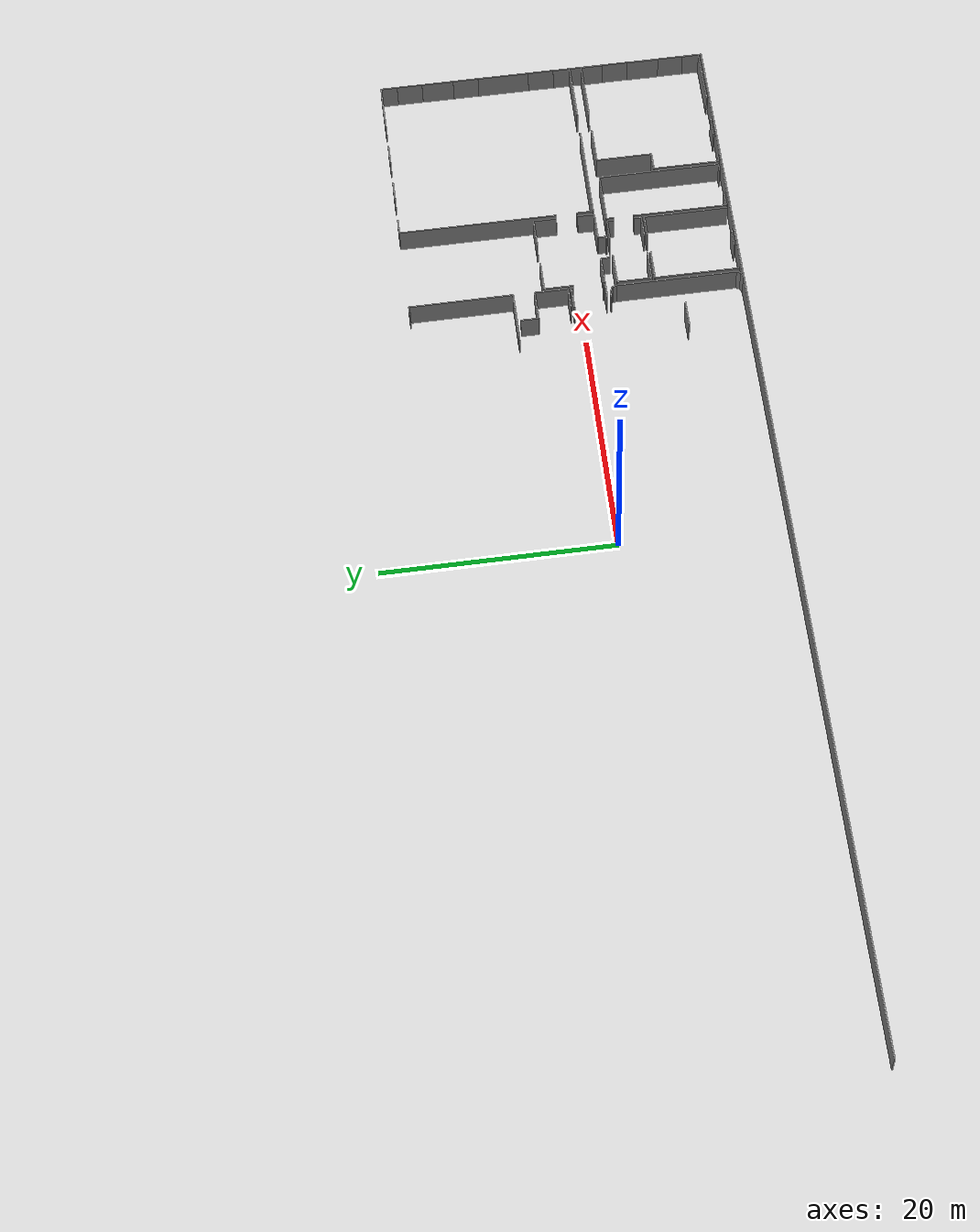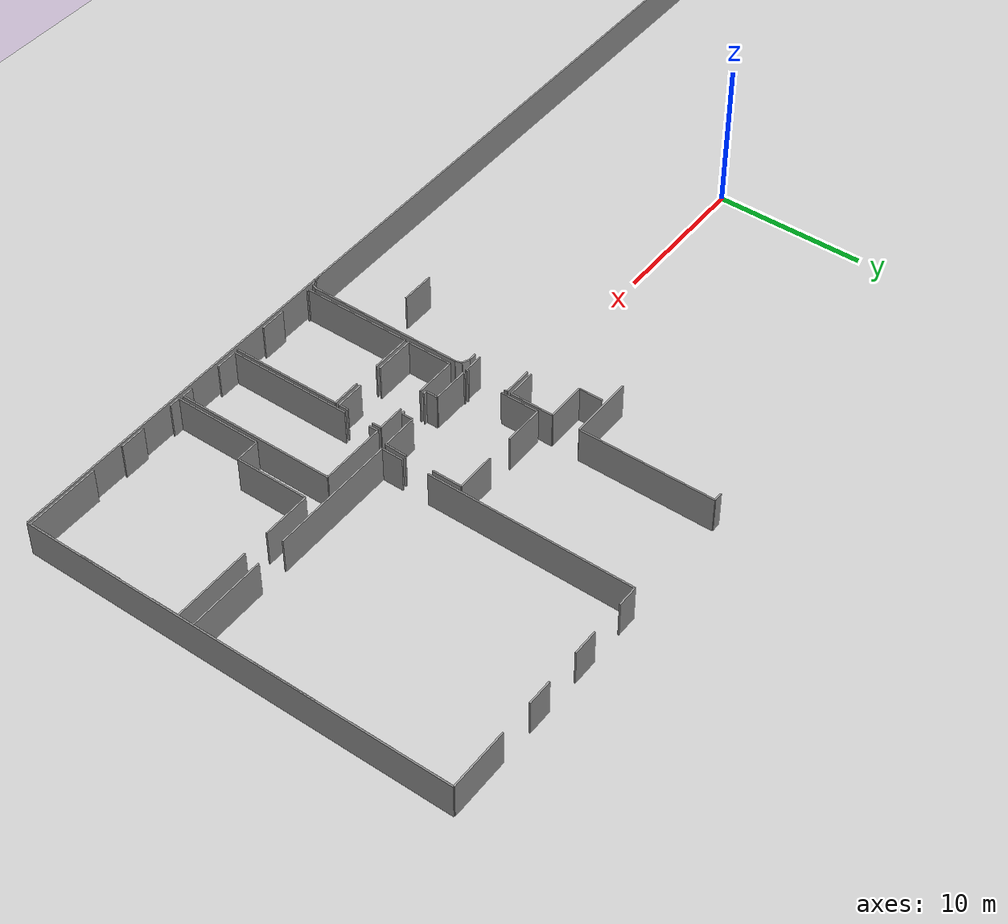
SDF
<sdf version="1.6">
 <world name="default">
  <model name="ground_plane">
   <static>1</static>
   <link name="link">
    <collision name="collision">
     <geometry><plane><normal>0 0 1</normal><size>100 100</size></plane></geometry>
     <surface><friction><ode><mu>100</mu><mu2>50</mu2></ode></friction></surface>
    </collision>
    <visual name="visual">
     <cast_shadows>0</cast_shadows>
     <geometry><plane><normal>0 0 1</normal><size>100 100</size></plane></geometry>
     <material>
      <script><uri>file://media/materials/scripts/gazebo.material</uri><name>Gazebo/Grey</name></script>
     </material>
    </visual>
   </link>
  </model>
  <model name="0510032266_A_40_1_103">
   <static>1</static>
   <link name="Wall_119">
    <collision name="Wall_119_Collision">
     <geometry><box><size>1.97434155817 0.1 2.5</size></box></geometry>
     <pose>0.987170779085 0 1.25 0 0 0</pose>
    </collision>
    <visual name="Wall_119_Visual">
     <pose>0.987170779085 0 1.25 0 0 0</pose>
     <geometry><box><size>1.97434155817 0.1 2.5</size></box></geometry>
     <material>
      <script><uri>file://media/materials/scripts/gazebo.material</uri><name>Gazebo/Grey</name></script>
      <ambient>1 1 1 1</ambient>
     </material>
    </visual>
    <pose>69.7387815732 -14.066437717 0 0 0 0.0</pose>
   </link>
   <link name="Wall_120">
    <collision name="Wall_120_Collision">
     <geometry><box><size>0.204912049057 0.1 2.5</size></box></geometry>
     <pose>0.102456024529 0 1.25 0 0 0</pose>
    </collision>
    <visual name="Wall_120_Visual">
     <pose>0.102456024529 0 1.25 0 0 0</pose>
     <geometry><box><size>0.204912049057 0.1 2.5</size></box></geometry>
     <material>
      <script><uri>file://media/materials/scripts/gazebo.material</uri><name>Gazebo/Grey</name></script>
      <ambient>1 1 1 1</ambient>
     </material>
    </visual>
    <pose>71.7131231313 -14.066437717 0 0 0 -1.57079632679</pose>
   </link>
   <link name="Wall_121">
    <collision name="Wall_121_Collision">
     <geometry><box><size>0.159714595857 0.1 2.5</size></box></geometry>
     <pose>0.0798572979287 0 1.25 0 0 0</pose>
    </collision>
    <visual name="Wall_121_Visual">
     <pose>0.0798572979287 0 1.25 0 0 0</pose>
     <geometry><box><size>0.159714595857 0.1 2.5</size></box></geometry>
     <material>
      <script><uri>file://media/materials/scripts/gazebo.material</uri><name>Gazebo/Grey</name></script>
      <ambient>1 1 1 1</ambient>
     </material>
    </visual>
    <pose>71.7131231313 -16.8410027233 0 0 0 -1.57079632679</pose>
   </link>
   <link name="Wall_122">
    <collision name="Wall_122_Collision">
     <geometry><box><size>1.31377316211 0.1 2.5</size></box></geometry>
     <pose>0.656886581054 0 1.25 0 0 0</pose>
    </collision>
    <visual name="Wall_122_Visual">
     <pose>0.656886581054 0 1.25 0 0 0</pose>
     <geometry><box><size>1.31377316211 0.1 2.5</size></box></geometry>
     <material>
      <script><uri>file://media/materials/scripts/gazebo.material</uri><name>Gazebo/Grey</name></script>
      <ambient>1 1 1 1</ambient>
     </material>
    </visual>
    <pose>71.7131231313 -17.0007173191 0 0 0 3.14159265359</pose>
   </link>
   <link name="Wall_277">
    <collision name="Wall_277_Collision">
     <geometry><box><size>1.94184001879 0.1 2.5</size></box></geometry>
     <pose>0.970920009395 0 1.25 0 0 0</pose>
    </collision>
    <visual name="Wall_277_Visual">
     <pose>0.970920009395 0 1.25 0 0 0</pose>
     <geometry><box><size>1.94184001879 0.1 2.5</size></box></geometry>
     <material>
      <script><uri>file://media/materials/scripts/gazebo.material</uri><name>Gazebo/Grey</name></script>
      <ambient>1 1 1 1</ambient>
     </material>
    </visual>
    <pose>71.7201058839 -13.7890320001 0 0 0 3.14159265359</pose>
   </link>
   <link name="Wall_281">
    <collision name="Wall_281_Collision">
     <geometry><box><size>1.56108956332 0.1 2.5</size></box></geometry>
     <pose>0.780544781662 0 1.25 0 0 0</pose>
    </collision>
    <visual name="Wall_281_Visual">
     <pose>0.780544781662 0 1.25 0 0 0</pose>
     <geometry><box><size>1.56108956332 0.1 2.5</size></box></geometry>
     <material>
      <script><uri>file://media/materials/scripts/gazebo.material</uri><name>Gazebo/Grey</name></script>
      <ambient>1 1 1 1</ambient>
     </material>
    </visual>
    <pose>69.066152059 -9.33111578039 0 0 0 -1.57079632679</pose>
   </link>
   <link name="Wall_282">
    <collision name="Wall_282_Collision">
     <geometry><box><size>2.64684411322 0.1 2.5</size></box></geometry>
     <pose>1.32342205661 0 1.25 0 0 0</pose>
    </collision>
    <visual name="Wall_282_Visual">
     <pose>1.32342205661 0 1.25 0 0 0</pose>
     <geometry><box><size>2.64684411322 0.1 2.5</size></box></geometry>
     <material>
      <script><uri>file://media/materials/scripts/gazebo.material</uri><name>Gazebo/Grey</name></script>
      <ambient>1 1 1 1</ambient>
     </material>
    </visual>
    <pose>69.066152059 -10.8922053437 0 0 0 0.0</pose>
   </link>
   <link name="Wall_283">
    <collision name="Wall_283_Collision">
     <geometry><box><size>2.89683538105 0.1 2.5</size></box></geometry>
     <pose>1.44841769052 0 1.25 0 0 0</pose>
    </collision>
    <visual name="Wall_283_Visual">
     <pose>1.44841769052 0 1.25 0 0 0</pose>
     <geometry><box><size>2.89683538105 0.1 2.5</size></box></geometry>
     <material>
      <script><uri>file://media/materials/scripts/gazebo.material</uri><name>Gazebo/Grey</name></script>
      <ambient>1 1 1 1</ambient>
     </material>
    </visual>
    <pose>71.7129961722 -10.8922053437 0 0 0 -1.56834202134</pose>
   </link>
   <link name="Wall_284">
    <collision name="Wall_284_Collision">
     <geometry><box><size>0.667805066939 0.1 2.5</size></box></geometry>
     <pose>0.33390253347 0 1.25 0 0 0</pose>
    </collision>
    <visual name="Wall_284_Visual">
     <pose>0.33390253347 0 1.25 0 0 0</pose>
     <geometry><box><size>0.667805066939 0.1 2.5</size></box></geometry>
     <material>
      <script><uri>file://media/materials/scripts/gazebo.material</uri><name>Gazebo/Grey</name></script>
      <ambient>1 1 1 1</ambient>
     </material>
    </visual>
    <pose>70.9332131453 -28.941224267 0 0 0 3.14159265359</pose>
   </link>
   <link name="Wall_291">
    <collision name="Wall_291_Collision">
     <geometry><box><size>2.26596669862 0.1 2.5</size></box></geometry>
     <pose>1.13298334931 0 1.25 0 0 0</pose>
    </collision>
    <visual name="Wall_291_Visual">
     <pose>1.13298334931 0 1.25 0 0 0</pose>
     <geometry><box><size>2.26596669862 0.1 2.5</size></box></geometry>
     <material>
      <script><uri>file://media/materials/scripts/gazebo.material</uri><name>Gazebo/Grey</name></script>
      <ambient>1 1 1 1</ambient>
     </material>
    </visual>
    <pose>68.9850251696 -23.5548558696 0 0 0 3.14159265359</pose>
   </link>
   <link name="Wall_294">
    <collision name="Wall_294_Collision">
     <geometry><box><size>0.556715821013 0.1 2.5</size></box></geometry>
     <pose>0.278357910507 0 1.25 0 0 0</pose>
    </collision>
    <visual name="Wall_294_Visual">
     <pose>0.278357910507 0 1.25 0 0 0</pose>
     <geometry><box><size>0.556715821013 0.1 2.5</size></box></geometry>
     <material>
      <script><uri>file://media/materials/scripts/gazebo.material</uri><name>Gazebo/Grey</name></script>
      <ambient>1 1 1 1</ambient>
     </material>
    </visual>
    <pose>70.3814487307 -17.3635665361 0 0 0 0.0</pose>
   </link>
   <link name="Wall_295">
    <collision name="Wall_295_Collision">
     <geometry><box><size>0.482670692922 0.1 2.5</size></box></geometry>
     <pose>0.241335346461 0 1.25 0 0 0</pose>
    </collision>
    <visual name="Wall_295_Visual">
     <pose>0.241335346461 0 1.25 0 0 0</pose>
     <geometry><box><size>0.482670692922 0.1 2.5</size></box></geometry>
     <material>
      <script><uri>file://media/materials/scripts/gazebo.material</uri><name>Gazebo/Grey</name></script>
      <ambient>1 1 1 1</ambient>
     </material>
    </visual>
    <pose>70.9381645517 -17.3635665361 0 0 0 -0.415046176137</pose>
   </link>
   <link name="Wall_296">
    <collision name="Wall_296_Collision">
     <geometry><box><size>0.403820158476 0.1 2.5</size></box></geometry>
     <pose>0.201910079238 0 1.25 0 0 0</pose>
    </collision>
    <visual name="Wall_296_Visual">
     <pose>0.201910079238 0 1.25 0 0 0</pose>
     <geometry><box><size>0.403820158476 0.1 2.5</size></box></geometry>
     <material>
      <script><uri>file://media/materials/scripts/gazebo.material</uri><name>Gazebo/Grey</name></script>
      <ambient>1 1 1 1</ambient>
     </material>
    </visual>
    <pose>71.3798553935 -17.558194895 0 0 0 -1.25660180278</pose>
   </link>
   <link name="Wall_297">
    <collision name="Wall_297_Collision">
     <geometry><box><size>10.4592746824 0.1 2.5</size></box></geometry>
     <pose>5.22963734122 0 1.25 0 0 0</pose>
    </collision>
    <visual name="Wall_297_Visual">
     <pose>5.22963734122 0 1.25 0 0 0</pose>
     <geometry><box><size>10.4592746824 0.1 2.5</size></box></geometry>
     <material>
      <script><uri>file://media/materials/scripts/gazebo.material</uri><name>Gazebo/Grey</name></script>
      <ambient>1 1 1 1</ambient>
     </material>
    </visual>
    <pose>71.5046562264 -17.942246288 0 0 0 -1.57079632679</pose>
   </link>
   <link name="Wall_298">
    <collision name="Wall_298_Collision">
     <geometry><box><size>0.38852491746 0.1 2.5</size></box></geometry>
     <pose>0.19426245873 0 1.25 0 0 0</pose>
    </collision>
    <visual name="Wall_298_Visual">
     <pose>0.19426245873 0 1.25 0 0 0</pose>
     <geometry><box><size>0.38852491746 0.1 2.5</size></box></geometry>
     <material>
      <script><uri>file://media/materials/scripts/gazebo.material</uri><name>Gazebo/Grey</name></script>
      <ambient>1 1 1 1</ambient>
     </material>
    </visual>
    <pose>71.5046562264 -28.4015209705 0 0 0 -1.97800510885</pose>
   </link>
   <link name="Wall_299">
    <collision name="Wall_299_Collision">
     <geometry><box><size>0.455887655317 0.1 2.5</size></box></geometry>
     <pose>0.227943827658 0 1.25 0 0 0</pose>
    </collision>
    <visual name="Wall_299_Visual">
     <pose>0.227943827658 0 1.25 0 0 0</pose>
     <geometry><box><size>0.455887655317 0.1 2.5</size></box></geometry>
     <material>
      <script><uri>file://media/materials/scripts/gazebo.material</uri><name>Gazebo/Grey</name></script>
      <ambient>1 1 1 1</ambient>
     </material>
    </visual>
    <pose>71.3507817509 -28.7582761488 0 0 0 -2.72865598857</pose>
   </link>
   <link name="Wall_311">
    <collision name="Wall_311_Collision">
     <geometry><box><size>4.31508718919 0.1 2.5</size></box></geometry>
     <pose>2.15754359459 0 1.25 0 0 0</pose>
    </collision>
    <visual name="Wall_311_Visual">
     <pose>2.15754359459 0 1.25 0 0 0</pose>
     <geometry><box><size>4.31508718919 0.1 2.5</size></box></geometry>
     <material>
      <script><uri>file://media/materials/scripts/gazebo.material</uri><name>Gazebo/Grey</name></script>
      <ambient>1 1 1 1</ambient>
     </material>
    </visual>
    <pose>71.73394443 -9.01765366817 0 0 0 3.14159265359</pose>
   </link>
   <link name="Wall_315">
    <collision name="Wall_315_Collision">
     <geometry><box><size>0.584392913141 0.1 2.5</size></box></geometry>
     <pose>0.29219645657 0 1.25 0 0 0</pose>
    </collision>
    <visual name="Wall_315_Visual">
     <pose>0.29219645657 0 1.25 0 0 0</pose>
     <geometry><box><size>0.584392913141 0.1 2.5</size></box></geometry>
     <material>
      <script><uri>file://media/materials/scripts/gazebo.material</uri><name>Gazebo/Grey</name></script>
      <ambient>1 1 1 1</ambient>
     </material>
    </visual>
    <pose>71.1167960592 -0.00787146656848 0 0 0 0.0</pose>
   </link>
   <link name="Wall_316">
    <collision name="Wall_316_Collision">
     <geometry><box><size>9.00984174335 0.1 2.5</size></box></geometry>
     <pose>4.50492087168 0 1.25 0 0 0</pose>
    </collision>
    <visual name="Wall_316_Visual">
     <pose>4.50492087168 0 1.25 0 0 0</pose>
     <geometry><box><size>9.00984174335 0.1 2.5</size></box></geometry>
     <material>
      <script><uri>file://media/materials/scripts/gazebo.material</uri><name>Gazebo/Grey</name></script>
      <ambient>1 1 1 1</ambient>
     </material>
    </visual>
    <pose>71.7011889723 -0.00787146656848 0 0 0 -1.56716079903</pose>
   </link>
   <link name="Wall_317">
    <collision name="Wall_317_Collision">
     <geometry><box><size>2.42263427516 0.1 2.5</size></box></geometry>
     <pose>1.21131713758 0 1.25 0 0 0</pose>
    </collision>
    <visual name="Wall_317_Visual">
     <pose>1.21131713758 0 1.25 0 0 0</pose>
     <geometry><box><size>2.42263427516 0.1 2.5</size></box></geometry>
     <material>
      <script><uri>file://media/materials/scripts/gazebo.material</uri><name>Gazebo/Grey</name></script>
      <ambient>1 1 1 1</ambient>
     </material>
    </visual>
    <pose>79.0907186522 -17.0407094477 0 0 0 3.14159265359</pose>
   </link>
   <link name="Wall_318">
    <collision name="Wall_318_Collision">
     <geometry><box><size>0.747916283144 0.1 2.5</size></box></geometry>
     <pose>0.373958141572 0 1.25 0 0 0</pose>
    </collision>
    <visual name="Wall_318_Visual">
     <pose>0.373958141572 0 1.25 0 0 0</pose>
     <geometry><box><size>0.747916283144 0.1 2.5</size></box></geometry>
     <material>
      <script><uri>file://media/materials/scripts/gazebo.material</uri><name>Gazebo/Grey</name></script>
      <ambient>1 1 1 1</ambient>
     </material>
    </visual>
    <pose>76.668084377 -17.0407094477 0 0 0 -1.57079632679</pose>
   </link>
   <link name="Wall_319">
    <collision name="Wall_319_Collision">
     <geometry><box><size>0.216973167186 0.1 2.5</size></box></geometry>
     <pose>0.108486583593 0 1.25 0 0 0</pose>
    </collision>
    <visual name="Wall_319_Visual">
     <pose>0.108486583593 0 1.25 0 0 0</pose>
     <geometry><box><size>0.216973167186 0.1 2.5</size></box></geometry>
     <material>
      <script><uri>file://media/materials/scripts/gazebo.material</uri><name>Gazebo/Grey</name></script>
      <ambient>1 1 1 1</ambient>
     </material>
    </visual>
    <pose>76.668084377 -17.7886257308 0 0 0 3.14159265359</pose>
   </link>
   <link name="Wall_320">
    <collision name="Wall_320_Collision">
     <geometry><box><size>0.239825812062 0.1 2.5</size></box></geometry>
     <pose>0.119912906031 0 1.25 0 0 0</pose>
    </collision>
    <visual name="Wall_320_Visual">
     <pose>0.119912906031 0 1.25 0 0 0</pose>
     <geometry><box><size>0.239825812062 0.1 2.5</size></box></geometry>
     <material>
      <script><uri>file://media/materials/scripts/gazebo.material</uri><name>Gazebo/Grey</name></script>
      <ambient>1 1 1 1</ambient>
     </material>
    </visual>
    <pose>74.6912036361 -17.7886257308 0 0 0 3.14159265359</pose>
   </link>
   <link name="Wall_321">
    <collision name="Wall_321_Collision">
     <geometry><box><size>0.792098063238 0.1 2.5</size></box></geometry>
     <pose>0.396049031619 0 1.25 0 0 0</pose>
    </collision>
    <visual name="Wall_321_Visual">
     <pose>0.396049031619 0 1.25 0 0 0</pose>
     <geometry><box><size>0.792098063238 0.1 2.5</size></box></geometry>
     <material>
      <script><uri>file://media/materials/scripts/gazebo.material</uri><name>Gazebo/Grey</name></script>
      <ambient>1 1 1 1</ambient>
     </material>
    </visual>
    <pose>74.451377824 -17.7886257308 0 0 0 1.57079632679</pose>
   </link>
   <link name="Wall_322">
    <collision name="Wall_322_Collision">
     <geometry><box><size>2.47633799062 0.1 2.5</size></box></geometry>
     <pose>1.23816899531 0 1.25 0 0 0</pose>
    </collision>
    <visual name="Wall_322_Visual">
     <pose>1.23816899531 0 1.25 0 0 0</pose>
     <geometry><box><size>2.47633799062 0.1 2.5</size></box></geometry>
     <material>
      <script><uri>file://media/materials/scripts/gazebo.material</uri><name>Gazebo/Grey</name></script>
      <ambient>1 1 1 1</ambient>
     </material>
    </visual>
    <pose>74.451377824 -16.9965276676 0 0 0 3.14159265359</pose>
   </link>
   <link name="Wall_323">
    <collision name="Wall_323_Collision">
     <geometry><box><size>0.129498320965 0.1 2.5</size></box></geometry>
     <pose>0.0647491604827 0 1.25 0 0 0</pose>
    </collision>
    <visual name="Wall_323_Visual">
     <pose>0.0647491604827 0 1.25 0 0 0</pose>
     <geometry><box><size>0.129498320965 0.1 2.5</size></box></geometry>
     <material>
      <script><uri>file://media/materials/scripts/gazebo.material</uri><name>Gazebo/Grey</name></script>
      <ambient>1 1 1 1</ambient>
     </material>
    </visual>
    <pose>71.9750398334 -16.9965276676 0 0 0 1.57079632679</pose>
   </link>
   <link name="Wall_324">
    <collision name="Wall_324_Collision">
     <geometry><box><size>2.54388025214 0.1 2.5</size></box></geometry>
     <pose>1.27194012607 0 1.25 0 0 0</pose>
    </collision>
    <visual name="Wall_324_Visual">
     <pose>1.27194012607 0 1.25 0 0 0</pose>
     <geometry><box><size>2.54388025214 0.1 2.5</size></box></geometry>
     <material>
      <script><uri>file://media/materials/scripts/gazebo.material</uri><name>Gazebo/Grey</name></script>
      <ambient>1 1 1 1</ambient>
     </material>
    </visual>
    <pose>71.9750398334 -14.2750315811 0 0 0 1.57079632679</pose>
   </link>
   <link name="Wall_325">
    <collision name="Wall_325_Collision">
     <geometry><box><size>2.69750080936 0.1 2.5</size></box></geometry>
     <pose>1.34875040468 0 1.25 0 0 0</pose>
    </collision>
    <visual name="Wall_325_Visual">
     <pose>1.34875040468 0 1.25 0 0 0</pose>
     <geometry><box><size>2.69750080936 0.1 2.5</size></box></geometry>
     <material>
      <script><uri>file://media/materials/scripts/gazebo.material</uri><name>Gazebo/Grey</name></script>
      <ambient>1 1 1 1</ambient>
     </material>
    </visual>
    <pose>71.9750398334 -11.7311513289 0 0 0 0.0</pose>
   </link>
   <link name="Wall_326">
    <collision name="Wall_326_Collision">
     <geometry><box><size>2.63605258648 0.1 2.5</size></box></geometry>
     <pose>1.31802629324 0 1.25 0 0 0</pose>
    </collision>
    <visual name="Wall_326_Visual">
     <pose>1.31802629324 0 1.25 0 0 0</pose>
     <geometry><box><size>2.63605258648 0.1 2.5</size></box></geometry>
     <material>
      <script><uri>file://media/materials/scripts/gazebo.material</uri><name>Gazebo/Grey</name></script>
      <ambient>1 1 1 1</ambient>
     </material>
    </visual>
    <pose>76.4856440954 -11.7311513289 0 0 0 0.0</pose>
   </link>
   <link name="Wall_327">
    <collision name="Wall_327_Collision">
     <geometry><box><size>1.98779922682 0.1 2.5</size></box></geometry>
     <pose>0.993899613409 0 1.25 0 0 0</pose>
    </collision>
    <visual name="Wall_327_Visual">
     <pose>0.993899613409 0 1.25 0 0 0</pose>
     <geometry><box><size>1.98779922682 0.1 2.5</size></box></geometry>
     <material>
      <script><uri>file://media/materials/scripts/gazebo.material</uri><name>Gazebo/Grey</name></script>
      <ambient>1 1 1 1</ambient>
     </material>
    </visual>
    <pose>79.1216966819 -11.7311513289 0 0 0 -1.57079632679</pose>
   </link>
   <link name="Wall_328">
    <collision name="Wall_328_Collision">
     <geometry><box><size>1.45236207278 0.1 2.5</size></box></geometry>
     <pose>0.72618103639 0 1.25 0 0 0</pose>
    </collision>
    <visual name="Wall_328_Visual">
     <pose>0.72618103639 0 1.25 0 0 0</pose>
     <geometry><box><size>1.45236207278 0.1 2.5</size></box></geometry>
     <material>
      <script><uri>file://media/materials/scripts/gazebo.material</uri><name>Gazebo/Grey</name></script>
      <ambient>1 1 1 1</ambient>
     </material>
    </visual>
    <pose>79.1216966819 -15.5886777841 0 0 0 -1.59212735689</pose>
   </link>
   <link name="Wall_329">
    <collision name="Wall_329_Collision">
     <geometry><box><size>5.2220832725 0.1 2.5</size></box></geometry>
     <pose>2.61104163625 0 1.25 0 0 0</pose>
    </collision>
    <visual name="Wall_329_Visual">
     <pose>2.61104163625 0 1.25 0 0 0</pose>
     <geometry><box><size>5.2220832725 0.1 2.5</size></box></geometry>
     <material>
      <script><uri>file://media/materials/scripts/gazebo.material</uri><name>Gazebo/Grey</name></script>
      <ambient>1 1 1 1</ambient>
     </material>
    </visual>
    <pose>95.1681891183 -17.0010981965 0 0 0 3.14159265359</pose>
   </link>
   <link name="Wall_330">
    <collision name="Wall_330_Collision">
     <geometry><box><size>8.53647853438 0.1 2.5</size></box></geometry>
     <pose>4.26823926719 0 1.25 0 0 0</pose>
    </collision>
    <visual name="Wall_330_Visual">
     <pose>4.26823926719 0 1.25 0 0 0</pose>
     <geometry><box><size>8.53647853438 0.1 2.5</size></box></geometry>
     <material>
      <script><uri>file://media/materials/scripts/gazebo.material</uri><name>Gazebo/Grey</name></script>
      <ambient>1 1 1 1</ambient>
     </material>
    </visual>
    <pose>88.0010918486 -17.0010981965 0 0 0 3.14159265359</pose>
   </link>
   <link name="Wall_331">
    <collision name="Wall_331_Collision">
     <geometry><box><size>1.441367096 0.1 2.5</size></box></geometry>
     <pose>0.720683548 0 1.25 0 0 0</pose>
    </collision>
    <visual name="Wall_331_Visual">
     <pose>0.720683548 0 1.25 0 0 0</pose>
     <geometry><box><size>1.441367096 0.1 2.5</size></box></geometry>
     <material>
      <script><uri>file://media/materials/scripts/gazebo.material</uri><name>Gazebo/Grey</name></script>
      <ambient>1 1 1 1</ambient>
     </material>
    </visual>
    <pose>79.4646133142 -17.0010981965 0 0 0 1.57079632679</pose>
   </link>
   <link name="Wall_332">
    <collision name="Wall_332_Collision">
     <geometry><box><size>13.7744316992 0.1 2.5</size></box></geometry>
     <pose>6.88721584958 0 1.25 0 0 0</pose>
    </collision>
    <visual name="Wall_332_Visual">
     <pose>6.88721584958 0 1.25 0 0 0</pose>
     <geometry><box><size>13.7744316992 0.1 2.5</size></box></geometry>
     <material>
      <script><uri>file://media/materials/scripts/gazebo.material</uri><name>Gazebo/Grey</name></script>
      <ambient>1 1 1 1</ambient>
     </material>
    </visual>
    <pose>79.4646133142 -13.7744316992 0 0 0 1.57079632679</pose>
   </link>
   <link name="Wall_333">
    <collision name="Wall_333_Collision">
     <geometry><box><size>1.39997841695 0.1 2.5</size></box></geometry>
     <pose>0.699989208473 0 1.25 0 0 0</pose>
    </collision>
    <visual name="Wall_333_Visual">
     <pose>0.699989208473 0 1.25 0 0 0</pose>
     <geometry><box><size>1.39997841695 0.1 2.5</size></box></geometry>
     <material>
      <script><uri>file://media/materials/scripts/gazebo.material</uri><name>Gazebo/Grey</name></script>
      <ambient>1 1 1 1</ambient>
     </material>
    </visual>
    <pose>79.4646133142 -0.0 0 0 0 0.0</pose>
   </link>
   <link name="Wall_334">
    <collision name="Wall_334_Collision">
     <geometry><box><size>1.72804083006 0.1 2.5</size></box></geometry>
     <pose>0.864020415029 0 1.25 0 0 0</pose>
    </collision>
    <visual name="Wall_334_Visual">
     <pose>0.864020415029 0 1.25 0 0 0</pose>
     <geometry><box><size>1.72804083006 0.1 2.5</size></box></geometry>
     <material>
      <script><uri>file://media/materials/scripts/gazebo.material</uri><name>Gazebo/Grey</name></script>
      <ambient>1 1 1 1</ambient>
     </material>
    </visual>
    <pose>83.1396994877 -0.0 0 0 0 0.0</pose>
   </link>
   <link name="Wall_335">
    <collision name="Wall_335_Collision">
     <geometry><box><size>1.68005027582 0.1 2.5</size></box></geometry>
     <pose>0.840025137909 0 1.25 0 0 0</pose>
    </collision>
    <visual name="Wall_335_Visual">
     <pose>0.840025137909 0 1.25 0 0 0</pose>
     <geometry><box><size>1.68005027582 0.1 2.5</size></box></geometry>
     <material>
      <script><uri>file://media/materials/scripts/gazebo.material</uri><name>Gazebo/Grey</name></script>
      <ambient>1 1 1 1</ambient>
     </material>
    </visual>
    <pose>87.1716677987 -0.0 0 0 0 0.0</pose>
   </link>
   <link name="Wall_336">
    <collision name="Wall_336_Collision">
     <geometry><box><size>4.05113914087 0.1 2.5</size></box></geometry>
     <pose>2.02556957043 0 1.25 0 0 0</pose>
    </collision>
    <visual name="Wall_336_Visual">
     <pose>2.02556957043 0 1.25 0 0 0</pose>
     <geometry><box><size>4.05113914087 0.1 2.5</size></box></geometry>
     <material>
      <script><uri>file://media/materials/scripts/gazebo.material</uri><name>Gazebo/Grey</name></script>
      <ambient>1 1 1 1</ambient>
     </material>
    </visual>
    <pose>91.1076550012 -0.0 0 0 0 0.0</pose>
   </link>
   <link name="Wall_337">
    <collision name="Wall_337_Collision">
     <geometry><box><size>1.42079971561 0.1 2.5</size></box></geometry>
     <pose>0.710399857806 0 1.25 0 0 0</pose>
    </collision>
    <visual name="Wall_337_Visual">
     <pose>0.710399857806 0 1.25 0 0 0</pose>
     <geometry><box><size>1.42079971561 0.1 2.5</size></box></geometry>
     <material>
      <script><uri>file://media/materials/scripts/gazebo.material</uri><name>Gazebo/Grey</name></script>
      <ambient>1 1 1 1</ambient>
     </material>
    </visual>
    <pose>95.1587941421 -0.0 0 0 0 -1.57079632679</pose>
   </link>
   <link name="Wall_338">
    <collision name="Wall_338_Collision">
     <geometry><box><size>2.8026229758 0.1 2.5</size></box></geometry>
     <pose>1.4013114879 0 1.25 0 0 0</pose>
    </collision>
    <visual name="Wall_338_Visual">
     <pose>1.4013114879 0 1.25 0 0 0</pose>
     <geometry><box><size>2.8026229758 0.1 2.5</size></box></geometry>
     <material>
      <script><uri>file://media/materials/scripts/gazebo.material</uri><name>Gazebo/Grey</name></script>
      <ambient>1 1 1 1</ambient>
     </material>
    </visual>
    <pose>95.1587941421 -3.6590893221 0 0 0 -1.57079632679</pose>
   </link>
   <link name="Wall_339">
    <collision name="Wall_339_Collision">
     <geometry><box><size>4.52304625756 0.1 2.5</size></box></geometry>
     <pose>2.26152312878 0 1.25 0 0 0</pose>
    </collision>
    <visual name="Wall_339_Visual">
     <pose>2.26152312878 0 1.25 0 0 0</pose>
     <geometry><box><size>4.52304625756 0.1 2.5</size></box></geometry>
     <material>
      <script><uri>file://media/materials/scripts/gazebo.material</uri><name>Gazebo/Grey</name></script>
      <ambient>1 1 1 1</ambient>
     </material>
    </visual>
    <pose>95.1587941421 -8.70774641182 0 0 0 -1.57079632679</pose>
   </link>
   <link name="Wall_340">
    <collision name="Wall_340_Collision">
     <geometry><box><size>1.50690729859 0.1 2.5</size></box></geometry>
     <pose>0.753453649297 0 1.25 0 0 0</pose>
    </collision>
    <visual name="Wall_340_Visual">
     <pose>0.753453649297 0 1.25 0 0 0</pose>
     <geometry><box><size>1.50690729859 0.1 2.5</size></box></geometry>
     <material>
      <script><uri>file://media/materials/scripts/gazebo.material</uri><name>Gazebo/Grey</name></script>
      <ambient>1 1 1 1</ambient>
     </material>
    </visual>
    <pose>95.1587941421 -15.4942201852 0 0 0 -1.56456167845</pose>
   </link>
   <link name="Wall_341">
    <collision name="Wall_341_Collision">
     <geometry><box><size>1.92838235014 0.1 2.5</size></box></geometry>
     <pose>0.96419117507 0 1.25 0 0 0</pose>
    </collision>
    <visual name="Wall_341_Visual">
     <pose>0.96419117507 0 1.25 0 0 0</pose>
     <geometry><box><size>1.92838235014 0.1 2.5</size></box></geometry>
     <material>
      <script><uri>file://media/materials/scripts/gazebo.material</uri><name>Gazebo/Grey</name></script>
      <ambient>1 1 1 1</ambient>
     </material>
    </visual>
    <pose>78.2541848906 -21.0860084682 0 0 0 3.14159265359</pose>
   </link>
   <link name="Wall_342">
    <collision name="Wall_342_Collision">
     <geometry><box><size>2.69369203522 0.1 2.5</size></box></geometry>
     <pose>1.34684601761 0 1.25 0 0 0</pose>
    </collision>
    <visual name="Wall_342_Visual">
     <pose>1.34684601761 0 1.25 0 0 0</pose>
     <geometry><box><size>2.69369203522 0.1 2.5</size></box></geometry>
     <material>
      <script><uri>file://media/materials/scripts/gazebo.material</uri><name>Gazebo/Grey</name></script>
      <ambient>1 1 1 1</ambient>
     </material>
    </visual>
    <pose>74.5544686443 -21.0860084682 0 0 0 3.14159265359</pose>
   </link>
   <link name="Wall_343">
    <collision name="Wall_343_Collision">
     <geometry><box><size>3.01819959246 0.1 2.5</size></box></geometry>
     <pose>1.50909979623 0 1.25 0 0 0</pose>
    </collision>
    <visual name="Wall_343_Visual">
     <pose>1.50909979623 0 1.25 0 0 0</pose>
     <geometry><box><size>3.01819959246 0.1 2.5</size></box></geometry>
     <material>
      <script><uri>file://media/materials/scripts/gazebo.material</uri><name>Gazebo/Grey</name></script>
      <ambient>1 1 1 1</ambient>
     </material>
    </visual>
    <pose>71.860776609 -21.0860084682 0 0 0 1.57079632679</pose>
   </link>
   <link name="Wall_344">
    <collision name="Wall_344_Collision">
     <geometry><box><size>2.79957595648 0.1 2.5</size></box></geometry>
     <pose>1.39978797824 0 1.25 0 0 0</pose>
    </collision>
    <visual name="Wall_344_Visual">
     <pose>1.39978797824 0 1.25 0 0 0</pose>
     <geometry><box><size>2.79957595648 0.1 2.5</size></box></geometry>
     <material>
      <script><uri>file://media/materials/scripts/gazebo.material</uri><name>Gazebo/Grey</name></script>
      <ambient>1 1 1 1</ambient>
     </material>
    </visual>
    <pose>71.860776609 -18.0678088757 0 0 0 0.0</pose>
   </link>
   <link name="Wall_345">
    <collision name="Wall_345_Collision">
     <geometry><box><size>1.82160971491 0.1 2.5</size></box></geometry>
     <pose>0.910804857457 0 1.25 0 0 0</pose>
    </collision>
    <visual name="Wall_345_Visual">
     <pose>0.910804857457 0 1.25 0 0 0</pose>
     <geometry><box><size>1.82160971491 0.1 2.5</size></box></geometry>
     <material>
      <script><uri>file://media/materials/scripts/gazebo.material</uri><name>Gazebo/Grey</name></script>
      <ambient>1 1 1 1</ambient>
     </material>
    </visual>
    <pose>76.4202601393 -18.0678088757 0 0 0 0.0</pose>
   </link>
   <link name="Wall_346">
    <collision name="Wall_346_Collision">
     <geometry><box><size>0.602167192489 0.1 2.5</size></box></geometry>
     <pose>0.301083596245 0 1.25 0 0 0</pose>
    </collision>
    <visual name="Wall_346_Visual">
     <pose>0.301083596245 0 1.25 0 0 0</pose>
     <geometry><box><size>0.602167192489 0.1 2.5</size></box></geometry>
     <material>
      <script><uri>file://media/materials/scripts/gazebo.material</uri><name>Gazebo/Grey</name></script>
      <ambient>1 1 1 1</ambient>
     </material>
    </visual>
    <pose>78.2418698542 -18.0678088757 0 0 0 -1.57079632679</pose>
   </link>
   <link name="Wall_347">
    <collision name="Wall_347_Collision">
     <geometry><box><size>0.638342390937 0.1 2.5</size></box></geometry>
     <pose>0.319171195469 0 1.25 0 0 0</pose>
    </collision>
    <visual name="Wall_347_Visual">
     <pose>0.319171195469 0 1.25 0 0 0</pose>
     <geometry><box><size>0.638342390937 0.1 2.5</size></box></geometry>
     <material>
      <script><uri>file://media/materials/scripts/gazebo.material</uri><name>Gazebo/Grey</name></script>
      <ambient>1 1 1 1</ambient>
     </material>
    </visual>
    <pose>78.2418698542 -20.4477848804 0 0 0 -1.55150291838</pose>
   </link>
   <link name="Wall_348">
    <collision name="Wall_348_Collision">
     <geometry><box><size>1.74936996528 0.1 2.5</size></box></geometry>
     <pose>0.874684982638 0 1.25 0 0 0</pose>
    </collision>
    <visual name="Wall_348_Visual">
     <pose>0.874684982638 0 1.25 0 0 0</pose>
     <geometry><box><size>1.74936996528 0.1 2.5</size></box></geometry>
     <material>
      <script><uri>file://media/materials/scripts/gazebo.material</uri><name>Gazebo/Grey</name></script>
      <ambient>1 1 1 1</ambient>
     </material>
    </visual>
    <pose>75.9959626994 -28.6875599088 0 0 0 3.14159265359</pose>
   </link>
   <link name="Wall_349">
    <collision name="Wall_349_Collision">
     <geometry><box><size>0.145241254102 0.1 2.5</size></box></geometry>
     <pose>0.0726206270512 0 1.25 0 0 0</pose>
    </collision>
    <visual name="Wall_349_Visual">
     <pose>0.0726206270512 0 1.25 0 0 0</pose>
     <geometry><box><size>0.145241254102 0.1 2.5</size></box></geometry>
     <material>
      <script><uri>file://media/materials/scripts/gazebo.material</uri><name>Gazebo/Grey</name></script>
      <ambient>1 1 1 1</ambient>
     </material>
    </visual>
    <pose>71.9890053386 -28.6875599088 0 0 0 3.14159265359</pose>
   </link>
   <link name="Wall_350">
    <collision name="Wall_350_Collision">
     <geometry><box><size>7.34192000305 0.1 2.5</size></box></geometry>
     <pose>3.67096000152 0 1.25 0 0 0</pose>
    </collision>
    <visual name="Wall_350_Visual">
     <pose>3.67096000152 0 1.25 0 0 0</pose>
     <geometry><box><size>7.34192000305 0.1 2.5</size></box></geometry>
     <material>
      <script><uri>file://media/materials/scripts/gazebo.material</uri><name>Gazebo/Grey</name></script>
      <ambient>1 1 1 1</ambient>
     </material>
    </visual>
    <pose>71.8437640845 -28.6875599088 0 0 0 1.57079632679</pose>
   </link>
   <link name="Wall_351">
    <collision name="Wall_351_Collision">
     <geometry><box><size>2.70854625439 0.1 2.5</size></box></geometry>
     <pose>1.35427312719 0 1.25 0 0 0</pose>
    </collision>
    <visual name="Wall_351_Visual">
     <pose>1.35427312719 0 1.25 0 0 0</pose>
     <geometry><box><size>2.70854625439 0.1 2.5</size></box></geometry>
     <material>
      <script><uri>file://media/materials/scripts/gazebo.material</uri><name>Gazebo/Grey</name></script>
      <ambient>1 1 1 1</ambient>
     </material>
    </visual>
    <pose>71.8437640845 -21.3456399058 0 0 0 0.0</pose>
   </link>
   <link name="Wall_352">
    <collision name="Wall_352_Collision">
     <geometry><box><size>1.94501399724 0.1 2.5</size></box></geometry>
     <pose>0.972506998622 0 1.25 0 0 0</pose>
    </collision>
    <visual name="Wall_352_Visual">
     <pose>0.972506998622 0 1.25 0 0 0</pose>
     <geometry><box><size>1.94501399724 0.1 2.5</size></box></geometry>
     <material>
      <script><uri>file://media/materials/scripts/gazebo.material</uri><name>Gazebo/Grey</name></script>
      <ambient>1 1 1 1</ambient>
     </material>
    </visual>
    <pose>76.3091708933 -21.3456399058 0 0 0 0.0</pose>
   </link>
   <link name="Wall_353">
    <collision name="Wall_353_Collision">
     <geometry><box><size>7.34192285819 0.1 2.5</size></box></geometry>
     <pose>3.6709614291 0 1.25 0 0 0</pose>
    </collision>
    <visual name="Wall_353_Visual">
     <pose>3.6709614291 0 1.25 0 0 0</pose>
     <geometry><box><size>7.34192285819 0.1 2.5</size></box></geometry>
     <material>
      <script><uri>file://media/materials/scripts/gazebo.material</uri><name>Gazebo/Grey</name></script>
      <ambient>1 1 1 1</ambient>
     </material>
    </visual>
    <pose>78.2541848906 -21.3456399058 0 0 0 -1.56991441656</pose>
   </link>
   <link name="Wall_354">
    <collision name="Wall_354_Collision">
     <geometry><box><size>0.733062063975 0.1 2.5</size></box></geometry>
     <pose>0.366531031987 0 1.25 0 0 0</pose>
    </collision>
    <visual name="Wall_354_Visual">
     <pose>0.366531031987 0 1.25 0 0 0</pose>
     <geometry><box><size>0.733062063975 0.1 2.5</size></box></geometry>
     <material>
      <script><uri>file://media/materials/scripts/gazebo.material</uri><name>Gazebo/Grey</name></script>
      <ambient>1 1 1 1</ambient>
     </material>
    </visual>
    <pose>82.9789692188 -28.6584862662 0 0 0 3.14159265359</pose>
   </link>
   <link name="Wall_355">
    <collision name="Wall_355_Collision">
     <geometry><box><size>1.46625108709 0.1 2.5</size></box></geometry>
     <pose>0.733125543544 0 1.25 0 0 0</pose>
    </collision>
    <visual name="Wall_355_Visual">
     <pose>0.733125543544 0 1.25 0 0 0</pose>
     <geometry><box><size>1.46625108709 0.1 2.5</size></box></geometry>
     <material>
      <script><uri>file://media/materials/scripts/gazebo.material</uri><name>Gazebo/Grey</name></script>
      <ambient>1 1 1 1</ambient>
     </material>
    </visual>
    <pose>79.9883197593 -28.6584862662 0 0 0 3.14159265359</pose>
   </link>
   <link name="Wall_356">
    <collision name="Wall_356_Collision">
     <geometry><box><size>8.22365121786 0.1 2.5</size></box></geometry>
     <pose>4.11182560893 0 1.25 0 0 0</pose>
    </collision>
    <visual name="Wall_356_Visual">
     <pose>4.11182560893 0 1.25 0 0 0</pose>
     <geometry><box><size>8.22365121786 0.1 2.5</size></box></geometry>
     <material>
      <script><uri>file://media/materials/scripts/gazebo.material</uri><name>Gazebo/Grey</name></script>
      <ambient>1 1 1 1</ambient>
     </material>
    </visual>
    <pose>78.5220686722 -28.6584862662 0 0 0 1.57079632679</pose>
   </link>
   <link name="Wall_357">
    <collision name="Wall_357_Collision">
     <geometry><box><size>0.626162469609 0.1 2.5</size></box></geometry>
     <pose>0.313081234805 0 1.25 0 0 0</pose>
    </collision>
    <visual name="Wall_357_Visual">
     <pose>0.313081234805 0 1.25 0 0 0</pose>
     <geometry><box><size>0.626162469609 0.1 2.5</size></box></geometry>
     <material>
      <script><uri>file://media/materials/scripts/gazebo.material</uri><name>Gazebo/Grey</name></script>
      <ambient>1 1 1 1</ambient>
     </material>
    </visual>
    <pose>78.5220686722 -18.6735309241 0 0 0 1.57079632679</pose>
   </link>
   <link name="Wall_358">
    <collision name="Wall_358_Collision">
     <geometry><box><size>4.42351029321 0.1 2.5</size></box></geometry>
     <pose>2.21175514661 0 1.25 0 0 0</pose>
    </collision>
    <visual name="Wall_358_Visual">
     <pose>2.21175514661 0 1.25 0 0 0</pose>
     <geometry><box><size>4.42351029321 0.1 2.5</size></box></geometry>
     <material>
      <script><uri>file://media/materials/scripts/gazebo.material</uri><name>Gazebo/Grey</name></script>
      <ambient>1 1 1 1</ambient>
     </material>
    </visual>
    <pose>78.5220686722 -18.0473684545 0 0 0 0.0</pose>
   </link>
   <link name="Wall_359">
    <collision name="Wall_359_Collision">
     <geometry><box><size>10.6111703465 0.1 2.5</size></box></geometry>
     <pose>5.30558517327 0 1.25 0 0 0</pose>
    </collision>
    <visual name="Wall_359_Visual">
     <pose>5.30558517327 0 1.25 0 0 0</pose>
     <geometry><box><size>10.6111703465 0.1 2.5</size></box></geometry>
     <material>
      <script><uri>file://media/materials/scripts/gazebo.material</uri><name>Gazebo/Grey</name></script>
      <ambient>1 1 1 1</ambient>
     </material>
    </visual>
    <pose>82.9455789654 -18.0473684545 0 0 0 -1.56764961372</pose>
   </link>
   <link name="Wall_360">
    <collision name="Wall_360_Collision">
     <geometry><box><size>4.91776221823 0.1 2.5</size></box></geometry>
     <pose>2.45888110912 0 1.25 0 0 0</pose>
    </collision>
    <visual name="Wall_360_Visual">
     <pose>2.45888110912 0 1.25 0 0 0</pose>
     <geometry><box><size>4.91776221823 0.1 2.5</size></box></geometry>
     <material>
      <script><uri>file://media/materials/scripts/gazebo.material</uri><name>Gazebo/Grey</name></script>
      <ambient>1 1 1 1</ambient>
     </material>
    </visual>
    <pose>95.161460284 -28.72717116 0 0 0 3.14159265359</pose>
   </link>
   <link name="Wall_361">
    <collision name="Wall_361_Collision">
     <geometry><box><size>1.7663824898 0.1 2.5</size></box></geometry>
     <pose>0.883191244898 0 1.25 0 0 0</pose>
    </collision>
    <visual name="Wall_361_Visual">
     <pose>0.883191244898 0 1.25 0 0 0</pose>
     <geometry><box><size>1.7663824898 0.1 2.5</size></box></geometry>
     <material>
      <script><uri>file://media/materials/scripts/gazebo.material</uri><name>Gazebo/Grey</name></script>
      <ambient>1 1 1 1</ambient>
     </material>
    </visual>
    <pose>87.9876341799 -28.72717116 0 0 0 3.14159265359</pose>
   </link>
   <link name="Wall_362">
    <collision name="Wall_362_Collision">
     <geometry><box><size>0.733189023113 0.1 2.5</size></box></geometry>
     <pose>0.366594511556 0 1.25 0 0 0</pose>
    </collision>
    <visual name="Wall_362_Visual">
     <pose>0.366594511556 0 1.25 0 0 0</pose>
     <geometry><box><size>0.733189023113 0.1 2.5</size></box></geometry>
     <material>
      <script><uri>file://media/materials/scripts/gazebo.material</uri><name>Gazebo/Grey</name></script>
      <ambient>1 1 1 1</ambient>
     </material>
    </visual>
    <pose>83.9952771201 -28.72717116 0 0 0 3.14159265359</pose>
   </link>
   <link name="Wall_363">
    <collision name="Wall_363_Collision">
     <geometry><box><size>5.81612508014 0.1 2.5</size></box></geometry>
     <pose>2.90806254007 0 1.25 0 0 0</pose>
    </collision>
    <visual name="Wall_363_Visual">
     <pose>2.90806254007 0 1.25 0 0 0</pose>
     <geometry><box><size>5.81612508014 0.1 2.5</size></box></geometry>
     <material>
      <script><uri>file://media/materials/scripts/gazebo.material</uri><name>Gazebo/Grey</name></script>
      <ambient>1 1 1 1</ambient>
     </material>
    </visual>
    <pose>83.2620880969 -28.72717116 0 0 0 1.57079632679</pose>
   </link>
   <link name="Wall_364">
    <collision name="Wall_364_Collision">
     <geometry><box><size>1.57899080181 0.1 2.5</size></box></geometry>
     <pose>0.789495400905 0 1.25 0 0 0</pose>
    </collision>
    <visual name="Wall_364_Visual">
     <pose>0.789495400905 0 1.25 0 0 0</pose>
     <geometry><box><size>1.57899080181 0.1 2.5</size></box></geometry>
     <material>
      <script><uri>file://media/materials/scripts/gazebo.material</uri><name>Gazebo/Grey</name></script>
      <ambient>1 1 1 1</ambient>
     </material>
    </visual>
    <pose>83.2620880969 -22.9110460798 0 0 0 0.0</pose>
   </link>
   <link name="Wall_365">
    <collision name="Wall_365_Collision">
     <geometry><box><size>4.86037668776 0.1 2.5</size></box></geometry>
     <pose>2.43018834388 0 1.25 0 0 0</pose>
    </collision>
    <visual name="Wall_365_Visual">
     <pose>2.43018834388 0 1.25 0 0 0</pose>
     <geometry><box><size>4.86037668776 0.1 2.5</size></box></geometry>
     <material>
      <script><uri>file://media/materials/scripts/gazebo.material</uri><name>Gazebo/Grey</name></script>
      <ambient>1 1 1 1</ambient>
     </material>
    </visual>
    <pose>84.8410788988 -22.9110460798 0 0 0 1.57079632679</pose>
   </link>
   <link name="Wall_366">
    <collision name="Wall_366_Collision">
     <geometry><box><size>3.25700973142 0.1 2.5</size></box></geometry>
     <pose>1.62850486571 0 1.25 0 0 0</pose>
    </collision>
    <visual name="Wall_366_Visual">
     <pose>1.62850486571 0 1.25 0 0 0</pose>
     <geometry><box><size>3.25700973142 0.1 2.5</size></box></geometry>
     <material>
      <script><uri>file://media/materials/scripts/gazebo.material</uri><name>Gazebo/Grey</name></script>
      <ambient>1 1 1 1</ambient>
     </material>
    </visual>
    <pose>84.8410788988 -18.0506693921 0 0 0 0.0</pose>
   </link>
   <link name="Wall_367">
    <collision name="Wall_367_Collision">
     <geometry><box><size>5.30422583492 0.1 2.5</size></box></geometry>
     <pose>2.65211291746 0 1.25 0 0 0</pose>
    </collision>
    <visual name="Wall_367_Visual">
     <pose>2.65211291746 0 1.25 0 0 0</pose>
     <geometry><box><size>5.30422583492 0.1 2.5</size></box></geometry>
     <material>
      <script><uri>file://media/materials/scripts/gazebo.material</uri><name>Gazebo/Grey</name></script>
      <ambient>1 1 1 1</ambient>
     </material>
    </visual>
    <pose>89.8404758428 -18.0506693921 0 0 0 0.0</pose>
   </link>
   <link name="Wall_368">
    <collision name="Wall_368_Collision">
     <geometry><box><size>1.89372250541 0.1 2.5</size></box></geometry>
     <pose>0.946861252706 0 1.25 0 0 0</pose>
    </collision>
    <visual name="Wall_368_Visual">
     <pose>0.946861252706 0 1.25 0 0 0</pose>
     <geometry><box><size>1.89372250541 0.1 2.5</size></box></geometry>
     <material>
      <script><uri>file://media/materials/scripts/gazebo.material</uri><name>Gazebo/Grey</name></script>
      <ambient>1 1 1 1</ambient>
     </material>
    </visual>
    <pose>95.1447016778 -18.0506693921 0 0 0 -1.57079632679</pose>
   </link>
   <link name="Wall_369">
    <collision name="Wall_369_Collision">
     <geometry><box><size>2.79919507906 0.1 2.5</size></box></geometry>
     <pose>1.39959753953 0 1.25 0 0 0</pose>
    </collision>
    <visual name="Wall_369_Visual">
     <pose>1.39959753953 0 1.25 0 0 0</pose>
     <geometry><box><size>2.79919507906 0.1 2.5</size></box></geometry>
     <material>
      <script><uri>file://media/materials/scripts/gazebo.material</uri><name>Gazebo/Grey</name></script>
      <ambient>1 1 1 1</ambient>
     </material>
    </visual>
    <pose>95.1447016778 -22.1991861919 0 0 0 -1.57079632679</pose>
   </link>
   <link name="Wall_370">
    <collision name="Wall_370_Collision">
     <geometry><box><size>1.50595558783 0.1 2.5</size></box></geometry>
     <pose>0.752977793914 0 1.25 0 0 0</pose>
    </collision>
    <visual name="Wall_370_Visual">
     <pose>0.752977793914 0 1.25 0 0 0</pose>
     <geometry><box><size>1.50595558783 0.1 2.5</size></box></geometry>
     <material>
      <script><uri>file://media/materials/scripts/gazebo.material</uri><name>Gazebo/Grey</name></script>
      <ambient>1 1 1 1</ambient>
     </material>
    </visual>
    <pose>95.1447016778 -27.2213088218 0 0 0 -1.55966787634</pose>
   </link>
   <link name="Wall_371">
    <collision name="Wall_371_Collision">
     <geometry><box><size>28.941224267 0.1 2.5</size></box></geometry>
     <pose>14.4706121335 0 1.25 0 0 0</pose>
    </collision>
    <visual name="Wall_371_Visual">
     <pose>14.4706121335 0 1.25 0 0 0</pose>
     <geometry><box><size>28.941224267 0.1 2.5</size></box></geometry>
     <material>
      <script><uri>file://media/materials/scripts/gazebo.material</uri><name>Gazebo/Grey</name></script>
      <ambient>1 1 1 1</ambient>
     </material>
    </visual>
    <pose>95.1681891183 -28.941224267 0 0 0 1.57079632679</pose>
   </link>
   <link name="Wall_372">
    <collision name="Wall_372_Collision">
     <geometry><box><size>95.1681891183 0.1 2.5</size></box></geometry>
     <pose>47.5840945592 0 1.25 0 0 0</pose>
    </collision>
    <visual name="Wall_372_Visual">
     <pose>47.5840945592 0 1.25 0 0 0</pose>
     <geometry><box><size>95.1681891183 0.1 2.5</size></box></geometry>
     <material>
      <script><uri>file://media/materials/scripts/gazebo.material</uri><name>Gazebo/Grey</name></script>
      <ambient>1 1 1 1</ambient>
     </material>
    </visual>
    <pose>95.1681891183 -28.941224267 0 0 0 3.14159265359</pose>
   </link>
   <pose>-47.55 14.841224267 0 0 0 0</pose>
  </model>
 </world>
</sdf>
